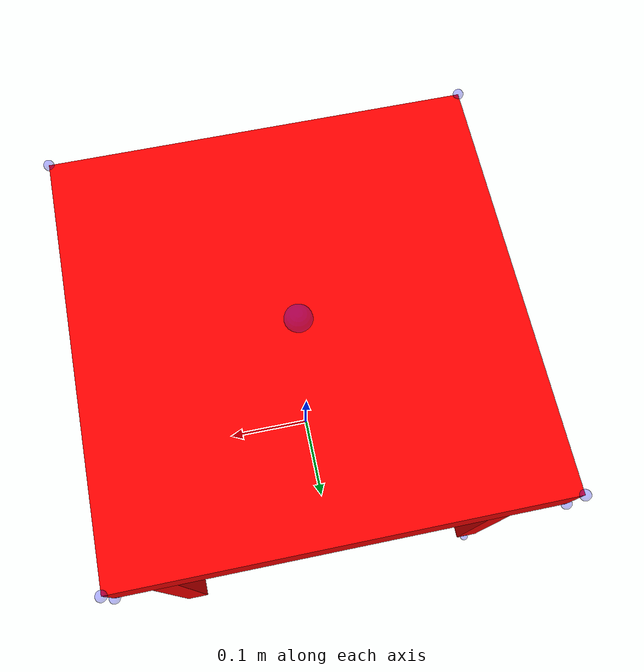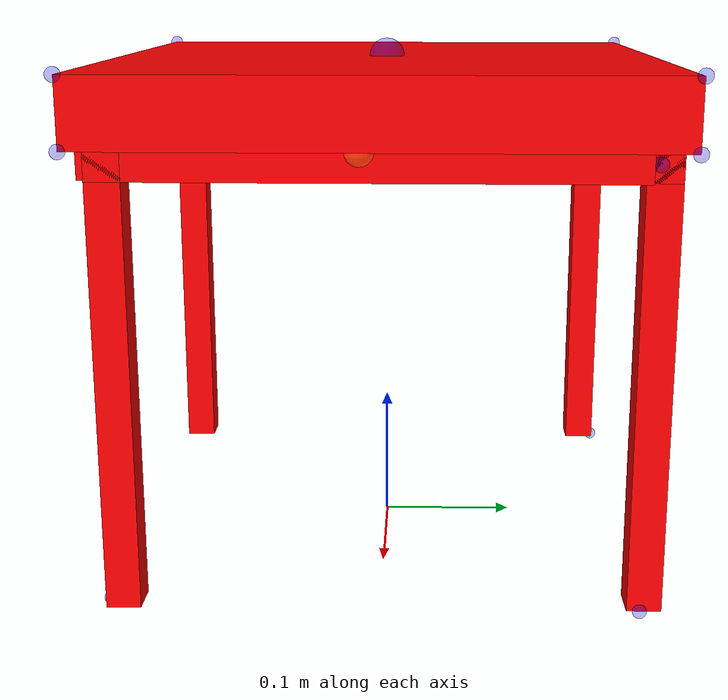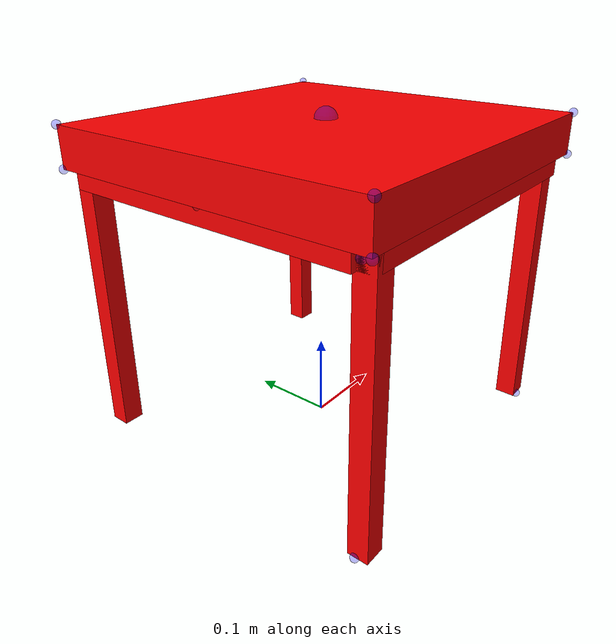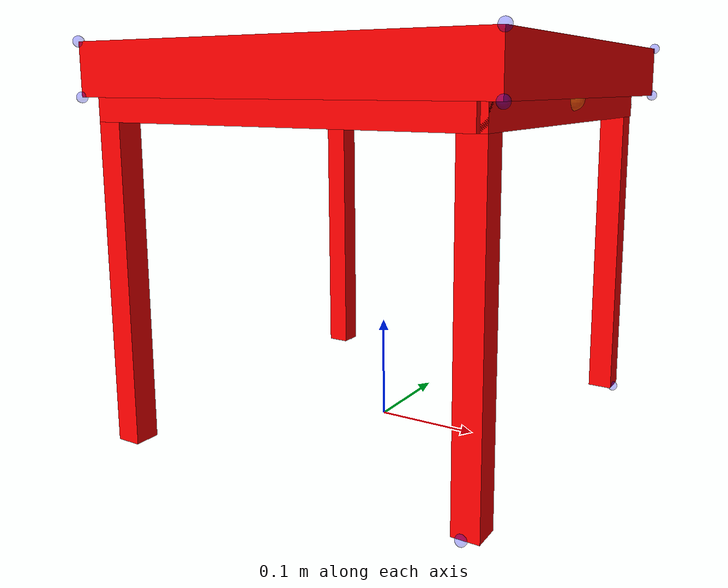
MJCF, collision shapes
<mujoco model="table_klubbo_0743">
    <custom>
        <numeric data="-0.330408 0.130433 0.026985 0.707048 0.009076 -0.70705 0.009074" name="1_part1_initpos"/>
        <numeric data="0.516525 -0.068009 0.026985 0.508322 -0.508323 -0.491538 0.491535" name="2_part2_initpos"/>
        <numeric data="0.094253 0.330903 0.026985 0.480384 0.518874 0.480387 -0.518873" name="3_part3_initpos"/>
        <numeric data="-0.404182 -0.114156 0.026985 0.466922 0.466922 0.531023 0.53102" name="4_part4_initpos"/>
        <numeric data="0.067728 -0.152203 0.02397 0.0 0.694917 0.71909 -0.0" name="5_part5_initpos"/>
    </custom>
    <asset>
        <mesh file="table_klubbo_0743/leg1.stl" name="part1" scale="0.0002 0.0002 0.0002"/>
        <mesh file="table_klubbo_0743/leg2.stl" name="part2" scale="0.0002 0.0002 0.0002"/>
        <mesh file="table_klubbo_0743/leg3.stl" name="part3" scale="0.0002 0.0002 0.0002"/>
        <mesh file="table_klubbo_0743/leg4.stl" name="part4" scale="0.0002 0.0002 0.0002"/>
        <mesh file="table_klubbo_0743/table_top.stl" name="part5" scale="0.0002 0.0002 0.0002"/>
        <texture file="../textures/light-wood.png" name="tex-light-wood" type="2d"/>
        <material name="light-wood" reflectance="0.5" texrepeat="20 20" texture="tex-light-wood" texuniform="true"/>
    </asset>
    <equality>
        <weld active="false" body1="1_part1" body2="5_part5" solimp="1 1 0.5" solref="0.01 0.3"/>
        <weld active="false" body1="2_part2" body2="5_part5" solimp="1 1 0.5" solref="0.01 0.3"/>
        <weld active="false" body1="3_part3" body2="5_part5" solimp="1 1 0.5" solref="0.01 0.3"/>
        <weld active="false" body1="4_part4" body2="5_part5" solimp="1 1 0.5" solref="0.01 0.3"/>
    </equality>
    <worldbody>
        <body name="1_part1" pos="-0.155 0.007 0.166">
            <geom conaffinity="0" contype="0" density="0" material="light-wood" mesh="part1" name="1_part1_geom"
                  pos="0.0 0.0 0.0" rgba="0.82 0.71 0.55 1" solref="0.001 1" type="mesh"/>
            <geom density="50" euler="0 0 0" name="noviz_collision_1_part1_1" pos="-0.015 0.17 0.0" rgba="1 0 0 1"
                  size="0.012 0.012 0.16" solref="0.001 1" type="box"/>
            <geom density="50" euler="0 0 0" name="noviz_collision_1_part1_2" pos="-0.015 0.0 0.15" rgba="1 0 0 1"
                  size="0.012 0.182 0.012" solref="0.001 1" type="box"/>
            <site group="0" name="leg1-table,0,conn_site" pos="-0.01 0.0 0.16" rgba="0.9019 0.0980 0.2941 0.3"
                  size="0.01"/>
            <site name="1_part1_corner_site1" pos="-0.012 -0.182 0.15" rgba="0 0 1 0.3" size="0.005"/>
            <site name="1_part1_corner_site2" pos="-0.012 0.182 0.15" rgba="0 0 1 0.3" size="0.005"/>
            <site name="1_part1_corner_site3" pos="-0.012 0.182 -0.16" rgba="0 0 1 0.3" size="0.005"/>
            <site name="1_part1_bottom_site" pos="-0.012 0.182 -0.16" rgba="0 0 1 0" size="0.0232"/>
            <site name="1_part1_top_site" pos="-0.012 0.0 0.15" rgba="0 0 1 0" size="0.0232"/>
            <site name="1_part1_horizontal_radius_site" pos="-0.012 0.0 0.0" rgba="0 0 1 0" size="0.08"/>
        </body>
        <body name="2_part2" pos="0.007 0.168 0.1666" quat="1 0 0 0">
            <geom conaffinity="0" contype="0" density="0" material="light-wood" mesh="part2" name="part2_geom"
                  pos="0.0 0.0 0.0" rgba="0.82 0.71 0.55 1" solref="0.001 1" type="mesh"/>
            <geom density="50" euler="0 0 0" name="noviz_collision_2_part2_1" pos="0.17 0.015 0.0" rgba="1 0 0 1"
                  size="0.012 0.012 0.16" solref="0.001 1" type="box"/>
            <geom density="50" euler="0 0 0" name="noviz_collision_2_part2_2" pos="0.0 0.015 0.15" rgba="1 0 0 1"
                  size="0.182 0.012 0.012" solref="0.001 1" type="box"/>
            <site group="0" name="leg2-table,0,conn_site" pos="0.0 0.01 0.16" rgba="0.2352 0.7058 0.2941 0.3"
                  size="0.01"/>
            <site name="2_part2_corner_site1" pos="0.182 0.012 0.15" rgba="0 0 1 0.3" size="0.005"/>
            <site name="2_part2_corner_site2" pos="-0.182 0.012 0.15" rgba="0 0 1 0.3" size="0.005"/>
            <site name="2_part2_corner_site3" pos="0.182 0.012 -0.16" rgba="0 0 1 0.3" size="0.005"/>
            <site name="2_part2_bottom_site" pos="0.182 0.012 -0.16" rgba="0 0 1 0" size="0.0232"/>
            <site name="2_part2_top_site" pos="0.0 0.012 0.15" rgba="0 0 1 0" size="0.0232"/>
            <site name="2_part2_horizontal_radius_site" pos="0.0 0.012 0.0" rgba="0 0 1 0" size="0.08"/>
        </body>
        <body name="3_part3" pos="0.168 -0.007 0.1666" quat="1 0 0 0">
            <geom conaffinity="0" contype="0" density="0" material="light-wood" mesh="part3" name="part3_geom"
                  pos="0.0 0.0 0.0" rgba="0.82 0.71 0.55 1" solref="0.001 1" type="mesh"/>
            <geom density="50" euler="0 0 0" name="noviz_collision_3_part3_1" pos="0.015 -0.17 0.0" rgba="1 0 0 1"
                  size="0.012 0.012 0.16" solref="0.001 1" type="box"/>
            <geom density="50" euler="0 0 0" name="noviz_collision_3_part3_2" pos="0.015 0.0 0.15" rgba="1 0 0 1"
                  size="0.012 0.182 0.012" solref="0.001 1" type="box"/>
            <site group="0" name="leg3-table,0,conn_site" pos="0.01 0.0 0.16" rgba="1.0 0.8823 0.0980 0.3" size="0.01"/>
            <site name="3_part3_corner_site1" pos="0.012 -0.182 0.15" rgba="0 0 1 0.3" size="0.005"/>
            <site name="3_part3_corner_site2" pos="0.012 0.182 0.15" rgba="0 0 1 0.3" size="0.005"/>
            <site name="3_part3_corner_site3" pos="0.012 -0.182 -0.16" rgba="0 0 1 0.3" size="0.005"/>
            <site name="3_part3_bottom_site" pos="0.012 -0.182 -0.16" rgba="0 0 1 0" size="0.0232"/>
            <site name="3_part3_top_site" pos="0.012 0.0 0.15" rgba="0 0 1 0" size="0.0232"/>
            <site name="3_part3_horizontal_radius_site" pos="0.012 0.0 0.0" rgba="0 0 1 0" size="0.08"/>
        </body>
        <body name="4_part4" pos="0.007 -0.168 0.1666" quat="1 0 0 0">
            <geom conaffinity="0" contype="0" density="0" material="light-wood" mesh="part4" name="part4_geom"
                  pos="0.0 0.0 0.0" rgba="0.82 0.71 0.55 1" solref="0.001 1" type="mesh"/>
            <geom density="50" euler="0 0 0" name="noviz_collision_4_part4_1" pos="-0.17 -0.015 0.0" rgba="1 0 0 1"
                  size="0.012 0.012 0.16" solref="0.001 1" type="box"/>
            <geom density="50" euler="0 0 0" name="noviz_collision_4_part4_2" pos="0.0 -0.015 0.15" rgba="1 0 0 1"
                  size="0.182 0.012 0.012" solref="0.001 1" type="box"/>
            <site group="0" name="leg4-table,0,conn_site" pos="0.0 -0.01 0.16" rgba="0.2627 0.3882 0.8470 0.3"
                  size="0.01"/>
            <site name="4_part4_corner_site1" pos="-0.182 -0.012 0.15" rgba="0 0 1 0.3" size="0.005"/>
            <site name="4_part4_corner_site2" pos="0.182 -0.012 0.15" rgba="0 0 1 0.3" size="0.005"/>
            <site name="4_part4_corner_site3" pos="-0.182 -0.012 -0.16" rgba="0 0 1 0.3" size="0.005"/>
            <site name="4_part4_bottom_site" pos="-0.182 -0.012 -0.16" rgba="0 0 1 0" size="0.0232"/>
            <site name="4_part4_top_site" pos="0.0 -0.012 0.15" rgba="0 0 1 0" size="0.0232"/>
            <site name="4_part4_horizontal_radius_site" pos="0.0 -0.012 0.0" rgba="0 0 1 0" size="0.08"/>
        </body>
        <body name="5_part5" pos="0.01 0.0 0.35" quat="1 0 0 0">
            <geom conaffinity="0" contype="0" density="0" material="light-wood" mesh="part5" name="part5_geom"
                  pos="0.0 0.0 0.0" rgba="0.82 0.71 0.55 1" solref="0.001 1" type="mesh"/>
            <geom density="200" euler="0 0 0" name="noviz_collision_5_part5_1" pos="0.0 0.0 0.0" rgba="1 0 0 1"
                  size="0.2 0.2 0.024" solref="0.001 1" type="box"/>
            <site group="0" name="table-leg1,0,conn_site" pos="-0.184 0.0 -0.025" rgba="0.9019 0.0980 0.2941 0.3"
                  size="0.01"/>
            <site group="0" name="table-leg2,0,conn_site" pos="0.0 0.184 -0.025" rgba="0.2352 0.7058 0.2941 0.3"
                  size="0.01"/>
            <site group="0" name="table-leg3,0,conn_site" pos="0.184 -0.012 -0.025" rgba="1.0 0.8823 0.0980 0.3"
                  size="0.01"/>
            <site group="0" name="table-leg4,0,conn_site" pos="0.0 -0.184 -0.025" rgba="0.2627 0.3882 0.8470 0.3"
                  size="0.01"/>
            <site name="5_part5_corner_site1" pos="-0.2 -0.2 -0.024" rgba="0 0 1 0.3" size="0.005"/>
            <site name="5_part5_corner_site2" pos="-0.2 0.2 -0.024" rgba="0 0 1 0.3" size="0.005"/>
            <site name="5_part5_corner_site3" pos="0.2 -0.2 -0.024" rgba="0 0 1 0.3" size="0.005"/>
            <site name="5_part5_corner_site4" pos="0.2 0.2 -0.024" rgba="0 0 1 0.3" size="0.005"/>
            <site name="5_part5_corner_site5" pos="-0.2 -0.2 0.024" rgba="0 0 1 0.3" size="0.005"/>
            <site name="5_part5_corner_site6" pos="-0.2 0.2 0.024" rgba="0 0 1 0.3" size="0.005"/>
            <site name="5_part5_corner_site7" pos="0.2 -0.2 0.024" rgba="0 0 1 0.3" size="0.005"/>
            <site name="5_part5_corner_site8" pos="0.2 0.2 0.024" rgba="0 0 1 0.3" size="0.005"/>
            <site name="5_part5_bottom_site" pos="0.0 0.0 -0.024" rgba="0 0 1 0.3" size="0.0132"/>
            <site name="5_part5_top_site" pos="0.0 0.0 0.024" rgba="0 0 1 0.3" size="0.0132"/>
            <site name="5_part5_horizontal_radius_site" pos="0.0 0.0 0.0" rgba="0 0 1 0" size="0.2"/>
        </body>
    </worldbody>
    <actuator/>
    <sensor/>
    <contact/>
    <default/>
</mujoco>
